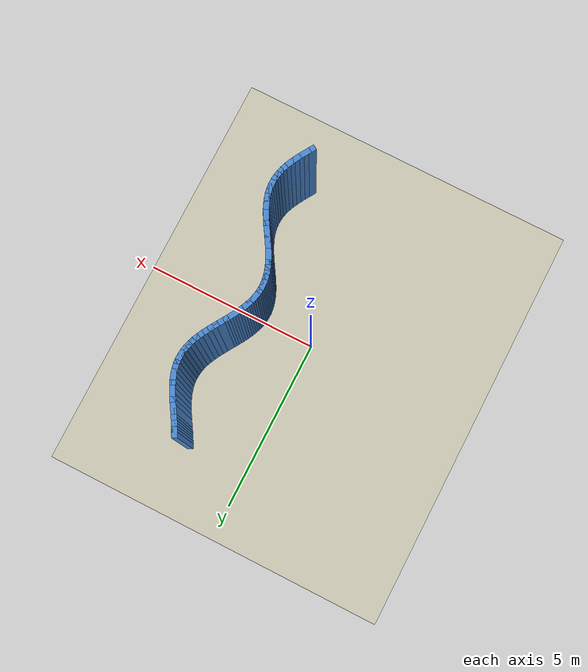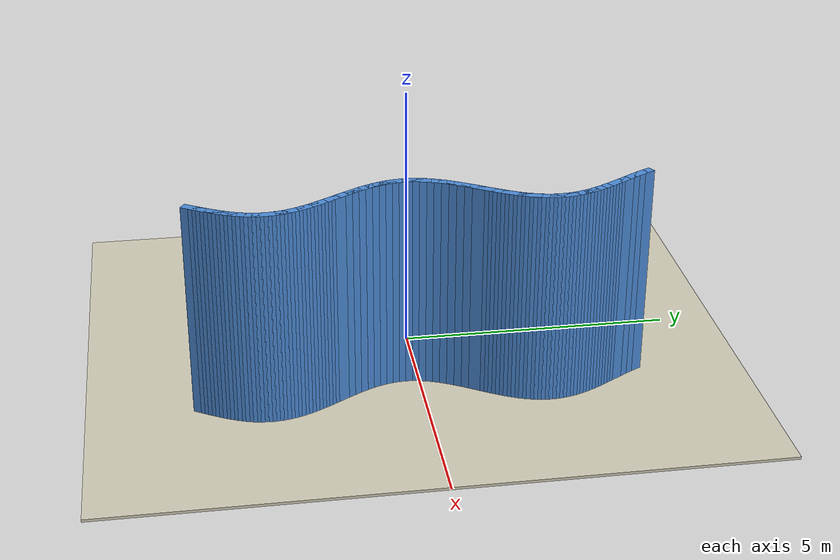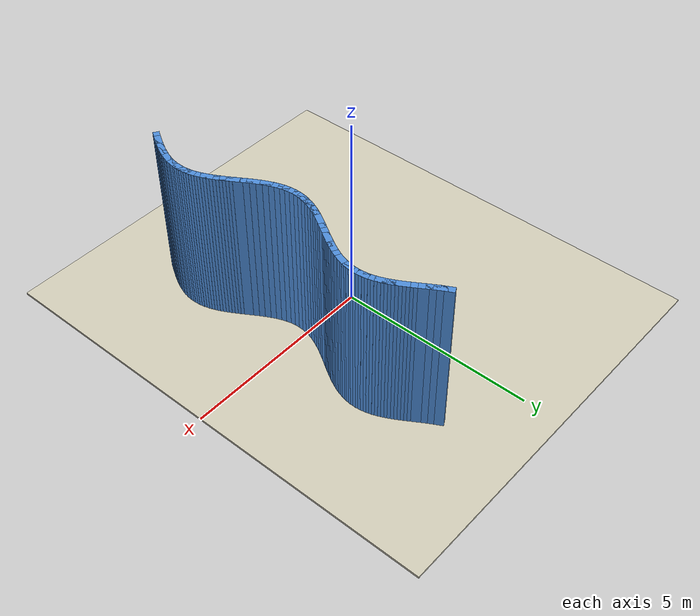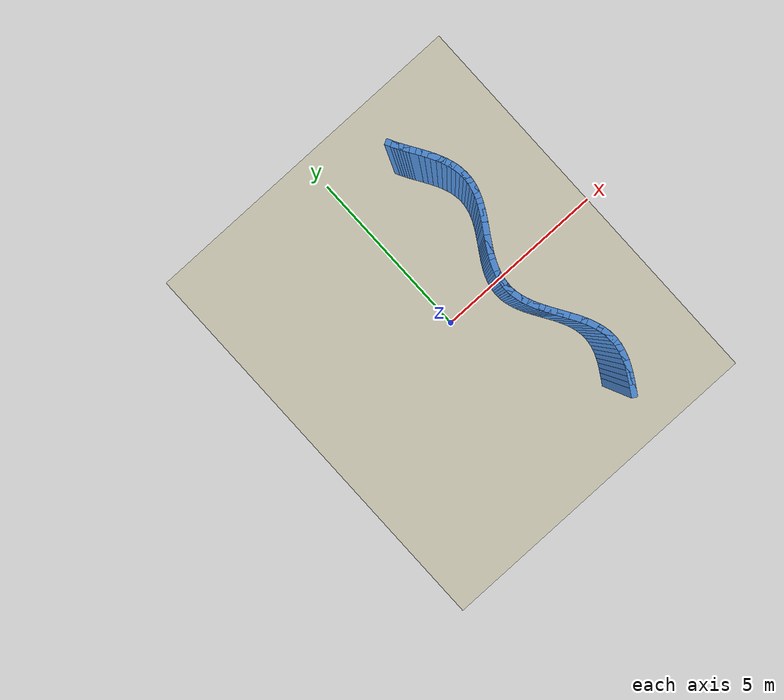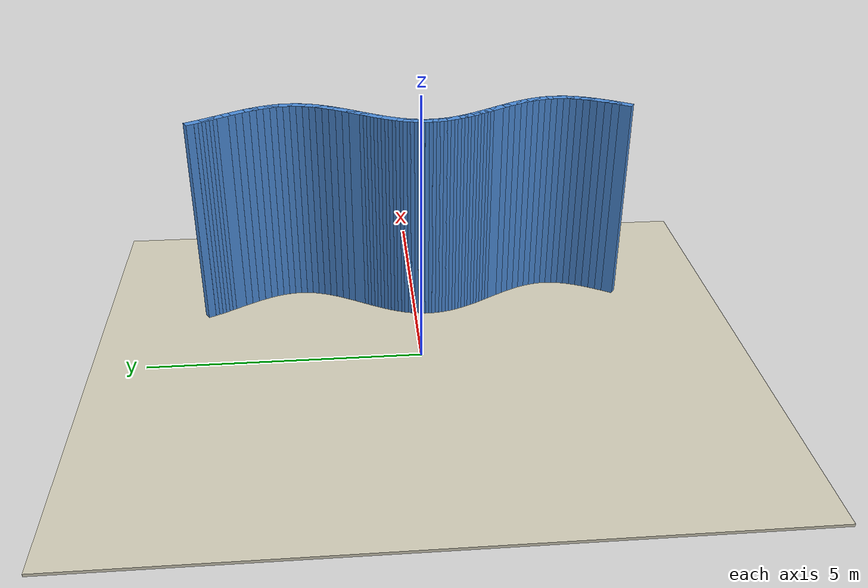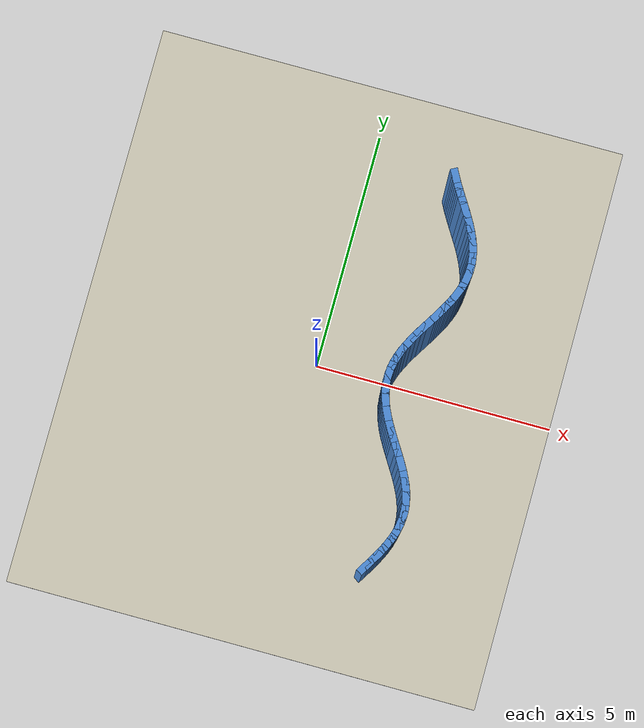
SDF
<sdf version="1.9">
 <world name="p3_wave">
  <physics name="1ms" type="ignored">
   <max_step_size>0.001</max_step_size>
   <real_time_factor>1.0</real_time_factor>
  </physics>
  <plugin filename="gz-sim-physics-system" name="gz::sim::systems::Physics"/>
  <plugin filename="gz-sim-scene-broadcaster-system" name="gz::sim::systems::SceneBroadcaster"/>
  <plugin filename="gz-sim-user-commands-system" name="gz::sim::systems::UserCommands"/>
  <plugin filename="gz-sim-sensors-system" name="gz::sim::systems::Sensors">
   <render_engine>ogre2</render_engine>
  </plugin>
  <plugin filename="gz-sim-imu-system" name="gz::sim::systems::Imu"/>
  <plugin filename="gz-sim-navsat-system" name="gz::sim::systems::NavSat"/>
  <spherical_coordinates>
   <latitude_deg>-35.363262</latitude_deg>
   <longitude_deg>149.165237</longitude_deg>
   <elevation>584</elevation>
   <heading_deg>0</heading_deg>
   <surface_model>EARTH_WGS84</surface_model>
  </spherical_coordinates>
  <light type="directional" name="main_light">
   <cast_shadows>false</cast_shadows>
   <pose>0 0 10 0 0 0</pose>
   <diffuse>1.0 1.0 1.0 1</diffuse>
   <specular>0.5 0.5 0.5 1</specular>
   <direction>0.1 0.1 -1</direction>
  </light>
  <model name="floor">
   <static>true</static>
   <link name="link">
    <collision name="c"><geometry><box><size>10.0 12.0 0.05</size></box></geometry></collision>
    <visual name="v">
     <geometry><box><size>10.0 12.0 0.05</size></box></geometry>
     <material><ambient>0.82 0.80 0.72 1</ambient><diffuse>0.82 0.80 0.72 1</diffuse></material>
    </visual>
   </link>
  </model>
  <model name="wall_000">
   <static>true</static>
   <pose>2.0391 -3.9375 2.0000 0 0 1.01167</pose>
   <link name="link">
    <collision name="c"><geometry><box><size>0.2975 0.1500 4.0000</size></box></geometry></collision>
    <visual name="v">
     <geometry><box><size>0.2975 0.1500 4.0000</size></box></geometry>
     <material><ambient>0.3 0.55 0.85 1</ambient><diffuse>0.3 0.55 0.85 1</diffuse></material>
    </visual>
   </link>
  </model>
  <model name="wall_001">
   <static>true</static>
   <pose>2.1164 -3.8125 2.0000 0 0 1.02282</pose>
   <link name="link">
    <collision name="c"><geometry><box><size>0.2964 0.1500 4.0000</size></box></geometry></collision>
    <visual name="v">
     <geometry><box><size>0.2964 0.1500 4.0000</size></box></geometry>
     <material><ambient>0.3 0.55 0.85 1</ambient><diffuse>0.3 0.55 0.85 1</diffuse></material>
    </visual>
   </link>
  </model>
  <model name="wall_002">
   <static>true</static>
   <pose>2.1908 -3.6875 2.0000 0 0 1.04529</pose>
   <link name="link">
    <collision name="c"><geometry><box><size>0.2945 0.1500 4.0000</size></box></geometry></collision>
    <visual name="v">
     <geometry><box><size>0.2945 0.1500 4.0000</size></box></geometry>
     <material><ambient>0.3 0.55 0.85 1</ambient><diffuse>0.3 0.55 0.85 1</diffuse></material>
    </visual>
   </link>
  </model>
  <model name="wall_003">
   <static>true</static>
   <pose>2.2604 -3.5625 2.0000 0 0 1.07940</pose>
   <link name="link">
    <collision name="c"><geometry><box><size>0.2918 0.1500 4.0000</size></box></geometry></collision>
    <visual name="v">
     <geometry><box><size>0.2918 0.1500 4.0000</size></box></geometry>
     <material><ambient>0.3 0.55 0.85 1</ambient><diffuse>0.3 0.55 0.85 1</diffuse></material>
    </visual>
   </link>
  </model>
  <model name="wall_004">
   <static>true</static>
   <pose>2.3237 -3.4375 2.0000 0 0 1.12548</pose>
   <link name="link">
    <collision name="c"><geometry><box><size>0.2885 0.1500 4.0000</size></box></geometry></collision>
    <visual name="v">
     <geometry><box><size>0.2885 0.1500 4.0000</size></box></geometry>
     <material><ambient>0.3 0.55 0.85 1</ambient><diffuse>0.3 0.55 0.85 1</diffuse></material>
    </visual>
   </link>
  </model>
  <model name="wall_005">
   <static>true</static>
   <pose>2.3790 -3.3125 2.0000 0 0 1.18372</pose>
   <link name="link">
    <collision name="c"><geometry><box><size>0.2850 0.1500 4.0000</size></box></geometry></collision>
    <visual name="v">
     <geometry><box><size>0.2850 0.1500 4.0000</size></box></geometry>
     <material><ambient>0.3 0.55 0.85 1</ambient><diffuse>0.3 0.55 0.85 1</diffuse></material>
    </visual>
   </link>
  </model>
  <model name="wall_006">
   <static>true</static>
   <pose>2.4250 -3.1875 2.0000 0 0 1.25389</pose>
   <link name="link">
    <collision name="c"><geometry><box><size>0.2816 0.1500 4.0000</size></box></geometry></collision>
    <visual name="v">
     <geometry><box><size>0.2816 0.1500 4.0000</size></box></geometry>
     <material><ambient>0.3 0.55 0.85 1</ambient><diffuse>0.3 0.55 0.85 1</diffuse></material>
    </visual>
   </link>
  </model>
  <model name="wall_007">
   <static>true</static>
   <pose>2.4605 -3.0625 2.0000 0 0 1.33506</pose>
   <link name="link">
    <collision name="c"><geometry><box><size>0.2786 0.1500 4.0000</size></box></geometry></collision>
    <visual name="v">
     <geometry><box><size>0.2786 0.1500 4.0000</size></box></geometry>
     <material><ambient>0.3 0.55 0.85 1</ambient><diffuse>0.3 0.55 0.85 1</diffuse></material>
    </visual>
   </link>
  </model>
  <model name="wall_008">
   <static>true</static>
   <pose>2.4847 -2.9375 2.0000 0 0 1.42530</pose>
   <link name="link">
    <collision name="c"><geometry><box><size>0.2763 0.1500 4.0000</size></box></geometry></collision>
    <visual name="v">
     <geometry><box><size>0.2763 0.1500 4.0000</size></box></geometry>
     <material><ambient>0.3 0.55 0.85 1</ambient><diffuse>0.3 0.55 0.85 1</diffuse></material>
    </visual>
   </link>
  </model>
  <model name="wall_009">
   <static>true</static>
   <pose>2.4969 -2.8125 2.0000 0 0 1.52159</pose>
   <link name="link">
    <collision name="c"><geometry><box><size>0.2752 0.1500 4.0000</size></box></geometry></collision>
    <visual name="v">
     <geometry><box><size>0.2752 0.1500 4.0000</size></box></geometry>
     <material><ambient>0.3 0.55 0.85 1</ambient><diffuse>0.3 0.55 0.85 1</diffuse></material>
    </visual>
   </link>
  </model>
  <model name="wall_010">
   <static>true</static>
   <pose>2.4969 -2.6875 2.0000 0 0 1.62000</pose>
   <link name="link">
    <collision name="c"><geometry><box><size>0.2752 0.1500 4.0000</size></box></geometry></collision>
    <visual name="v">
     <geometry><box><size>0.2752 0.1500 4.0000</size></box></geometry>
     <material><ambient>0.3 0.55 0.85 1</ambient><diffuse>0.3 0.55 0.85 1</diffuse></material>
    </visual>
   </link>
  </model>
  <model name="wall_011">
   <static>true</static>
   <pose>2.4847 -2.5625 2.0000 0 0 1.71629</pose>
   <link name="link">
    <collision name="c"><geometry><box><size>0.2763 0.1500 4.0000</size></box></geometry></collision>
    <visual name="v">
     <geometry><box><size>0.2763 0.1500 4.0000</size></box></geometry>
     <material><ambient>0.3 0.55 0.85 1</ambient><diffuse>0.3 0.55 0.85 1</diffuse></material>
    </visual>
   </link>
  </model>
  <model name="wall_012">
   <static>true</static>
   <pose>2.4605 -2.4375 2.0000 0 0 1.80653</pose>
   <link name="link">
    <collision name="c"><geometry><box><size>0.2786 0.1500 4.0000</size></box></geometry></collision>
    <visual name="v">
     <geometry><box><size>0.2786 0.1500 4.0000</size></box></geometry>
     <material><ambient>0.3 0.55 0.85 1</ambient><diffuse>0.3 0.55 0.85 1</diffuse></material>
    </visual>
   </link>
  </model>
  <model name="wall_013">
   <static>true</static>
   <pose>2.4250 -2.3125 2.0000 0 0 1.88770</pose>
   <link name="link">
    <collision name="c"><geometry><box><size>0.2816 0.1500 4.0000</size></box></geometry></collision>
    <visual name="v">
     <geometry><box><size>0.2816 0.1500 4.0000</size></box></geometry>
     <material><ambient>0.3 0.55 0.85 1</ambient><diffuse>0.3 0.55 0.85 1</diffuse></material>
    </visual>
   </link>
  </model>
  <model name="wall_014">
   <static>true</static>
   <pose>2.3790 -2.1875 2.0000 0 0 1.95787</pose>
   <link name="link">
    <collision name="c"><geometry><box><size>0.2850 0.1500 4.0000</size></box></geometry></collision>
    <visual name="v">
     <geometry><box><size>0.2850 0.1500 4.0000</size></box></geometry>
     <material><ambient>0.3 0.55 0.85 1</ambient><diffuse>0.3 0.55 0.85 1</diffuse></material>
    </visual>
   </link>
  </model>
  <model name="wall_015">
   <static>true</static>
   <pose>2.3237 -2.0625 2.0000 0 0 2.01611</pose>
   <link name="link">
    <collision name="c"><geometry><box><size>0.2885 0.1500 4.0000</size></box></geometry></collision>
    <visual name="v">
     <geometry><box><size>0.2885 0.1500 4.0000</size></box></geometry>
     <material><ambient>0.3 0.55 0.85 1</ambient><diffuse>0.3 0.55 0.85 1</diffuse></material>
    </visual>
   </link>
  </model>
  <model name="wall_016">
   <static>true</static>
   <pose>2.2604 -1.9375 2.0000 0 0 2.06219</pose>
   <link name="link">
    <collision name="c"><geometry><box><size>0.2918 0.1500 4.0000</size></box></geometry></collision>
    <visual name="v">
     <geometry><box><size>0.2918 0.1500 4.0000</size></box></geometry>
     <material><ambient>0.3 0.55 0.85 1</ambient><diffuse>0.3 0.55 0.85 1</diffuse></material>
    </visual>
   </link>
  </model>
  <model name="wall_017">
   <static>true</static>
   <pose>2.1908 -1.8125 2.0000 0 0 2.09630</pose>
   <link name="link">
    <collision name="c"><geometry><box><size>0.2945 0.1500 4.0000</size></box></geometry></collision>
    <visual name="v">
     <geometry><box><size>0.2945 0.1500 4.0000</size></box></geometry>
     <material><ambient>0.3 0.55 0.85 1</ambient><diffuse>0.3 0.55 0.85 1</diffuse></material>
    </visual>
   </link>
  </model>
  <model name="wall_018">
   <static>true</static>
   <pose>2.1164 -1.6875 2.0000 0 0 2.11878</pose>
   <link name="link">
    <collision name="c"><geometry><box><size>0.2964 0.1500 4.0000</size></box></geometry></collision>
    <visual name="v">
     <geometry><box><size>0.2964 0.1500 4.0000</size></box></geometry>
     <material><ambient>0.3 0.55 0.85 1</ambient><diffuse>0.3 0.55 0.85 1</diffuse></material>
    </visual>
   </link>
  </model>
  <model name="wall_019">
   <static>true</static>
   <pose>2.0391 -1.5625 2.0000 0 0 2.12993</pose>
   <link name="link">
    <collision name="c"><geometry><box><size>0.2975 0.1500 4.0000</size></box></geometry></collision>
    <visual name="v">
     <geometry><box><size>0.2975 0.1500 4.0000</size></box></geometry>
     <material><ambient>0.3 0.55 0.85 1</ambient><diffuse>0.3 0.55 0.85 1</diffuse></material>
    </visual>
   </link>
  </model>
  <model name="wall_020">
   <static>true</static>
   <pose>1.9609 -1.4375 2.0000 0 0 2.12993</pose>
   <link name="link">
    <collision name="c"><geometry><box><size>0.2975 0.1500 4.0000</size></box></geometry></collision>
    <visual name="v">
     <geometry><box><size>0.2975 0.1500 4.0000</size></box></geometry>
     <material><ambient>0.3 0.55 0.85 1</ambient><diffuse>0.3 0.55 0.85 1</diffuse></material>
    </visual>
   </link>
  </model>
  <model name="wall_021">
   <static>true</static>
   <pose>1.8836 -1.3125 2.0000 0 0 2.11878</pose>
   <link name="link">
    <collision name="c"><geometry><box><size>0.2964 0.1500 4.0000</size></box></geometry></collision>
    <visual name="v">
     <geometry><box><size>0.2964 0.1500 4.0000</size></box></geometry>
     <material><ambient>0.3 0.55 0.85 1</ambient><diffuse>0.3 0.55 0.85 1</diffuse></material>
    </visual>
   </link>
  </model>
  <model name="wall_022">
   <static>true</static>
   <pose>1.8092 -1.1875 2.0000 0 0 2.09630</pose>
   <link name="link">
    <collision name="c"><geometry><box><size>0.2945 0.1500 4.0000</size></box></geometry></collision>
    <visual name="v">
     <geometry><box><size>0.2945 0.1500 4.0000</size></box></geometry>
     <material><ambient>0.3 0.55 0.85 1</ambient><diffuse>0.3 0.55 0.85 1</diffuse></material>
    </visual>
   </link>
  </model>
  <model name="wall_023">
   <static>true</static>
   <pose>1.7396 -1.0625 2.0000 0 0 2.06219</pose>
   <link name="link">
    <collision name="c"><geometry><box><size>0.2918 0.1500 4.0000</size></box></geometry></collision>
    <visual name="v">
     <geometry><box><size>0.2918 0.1500 4.0000</size></box></geometry>
     <material><ambient>0.3 0.55 0.85 1</ambient><diffuse>0.3 0.55 0.85 1</diffuse></material>
    </visual>
   </link>
  </model>
  <model name="wall_024">
   <static>true</static>
   <pose>1.6763 -0.9375 2.0000 0 0 2.01611</pose>
   <link name="link">
    <collision name="c"><geometry><box><size>0.2885 0.1500 4.0000</size></box></geometry></collision>
    <visual name="v">
     <geometry><box><size>0.2885 0.1500 4.0000</size></box></geometry>
     <material><ambient>0.3 0.55 0.85 1</ambient><diffuse>0.3 0.55 0.85 1</diffuse></material>
    </visual>
   </link>
  </model>
  <model name="wall_025">
   <static>true</static>
   <pose>1.6210 -0.8125 2.0000 0 0 1.95787</pose>
   <link name="link">
    <collision name="c"><geometry><box><size>0.2850 0.1500 4.0000</size></box></geometry></collision>
    <visual name="v">
     <geometry><box><size>0.2850 0.1500 4.0000</size></box></geometry>
     <material><ambient>0.3 0.55 0.85 1</ambient><diffuse>0.3 0.55 0.85 1</diffuse></material>
    </visual>
   </link>
  </model>
  <model name="wall_026">
   <static>true</static>
   <pose>1.5750 -0.6875 2.0000 0 0 1.88770</pose>
   <link name="link">
    <collision name="c"><geometry><box><size>0.2816 0.1500 4.0000</size></box></geometry></collision>
    <visual name="v">
     <geometry><box><size>0.2816 0.1500 4.0000</size></box></geometry>
     <material><ambient>0.3 0.55 0.85 1</ambient><diffuse>0.3 0.55 0.85 1</diffuse></material>
    </visual>
   </link>
  </model>
  <model name="wall_027">
   <static>true</static>
   <pose>1.5395 -0.5625 2.0000 0 0 1.80653</pose>
   <link name="link">
    <collision name="c"><geometry><box><size>0.2786 0.1500 4.0000</size></box></geometry></collision>
    <visual name="v">
     <geometry><box><size>0.2786 0.1500 4.0000</size></box></geometry>
     <material><ambient>0.3 0.55 0.85 1</ambient><diffuse>0.3 0.55 0.85 1</diffuse></material>
    </visual>
   </link>
  </model>
  <model name="wall_028">
   <static>true</static>
   <pose>1.5153 -0.4375 2.0000 0 0 1.71629</pose>
   <link name="link">
    <collision name="c"><geometry><box><size>0.2763 0.1500 4.0000</size></box></geometry></collision>
    <visual name="v">
     <geometry><box><size>0.2763 0.1500 4.0000</size></box></geometry>
     <material><ambient>0.3 0.55 0.85 1</ambient><diffuse>0.3 0.55 0.85 1</diffuse></material>
    </visual>
   </link>
  </model>
  <model name="wall_029">
   <static>true</static>
   <pose>1.5031 -0.3125 2.0000 0 0 1.62000</pose>
   <link name="link">
    <collision name="c"><geometry><box><size>0.2752 0.1500 4.0000</size></box></geometry></collision>
    <visual name="v">
     <geometry><box><size>0.2752 0.1500 4.0000</size></box></geometry>
     <material><ambient>0.3 0.55 0.85 1</ambient><diffuse>0.3 0.55 0.85 1</diffuse></material>
    </visual>
   </link>
  </model>
  <model name="wall_030">
   <static>true</static>
   <pose>1.5031 -0.1875 2.0000 0 0 1.52159</pose>
   <link name="link">
    <collision name="c"><geometry><box><size>0.2752 0.1500 4.0000</size></box></geometry></collision>
    <visual name="v">
     <geometry><box><size>0.2752 0.1500 4.0000</size></box></geometry>
     <material><ambient>0.3 0.55 0.85 1</ambient><diffuse>0.3 0.55 0.85 1</diffuse></material>
    </visual>
   </link>
  </model>
  <model name="wall_031">
   <static>true</static>
   <pose>1.5153 -0.0625 2.0000 0 0 1.42530</pose>
   <link name="link">
    <collision name="c"><geometry><box><size>0.2763 0.1500 4.0000</size></box></geometry></collision>
    <visual name="v">
     <geometry><box><size>0.2763 0.1500 4.0000</size></box></geometry>
     <material><ambient>0.3 0.55 0.85 1</ambient><diffuse>0.3 0.55 0.85 1</diffuse></material>
    </visual>
   </link>
  </model>
  <model name="wall_032">
   <static>true</static>
   <pose>1.5395 0.0625 2.0000 0 0 1.33506</pose>
   <link name="link">
    <collision name="c"><geometry><box><size>0.2786 0.1500 4.0000</size></box></geometry></collision>
    <visual name="v">
     <geometry><box><size>0.2786 0.1500 4.0000</size></box></geometry>
     <material><ambient>0.3 0.55 0.85 1</ambient><diffuse>0.3 0.55 0.85 1</diffuse></material>
    </visual>
   </link>
  </model>
  <model name="wall_033">
   <static>true</static>
   <pose>1.5750 0.1875 2.0000 0 0 1.25389</pose>
   <link name="link">
    <collision name="c"><geometry><box><size>0.2816 0.1500 4.0000</size></box></geometry></collision>
    <visual name="v">
     <geometry><box><size>0.2816 0.1500 4.0000</size></box></geometry>
     <material><ambient>0.3 0.55 0.85 1</ambient><diffuse>0.3 0.55 0.85 1</diffuse></material>
    </visual>
   </link>
  </model>
  <model name="wall_034">
   <static>true</static>
   <pose>1.6210 0.3125 2.0000 0 0 1.18372</pose>
   <link name="link">
    <collision name="c"><geometry><box><size>0.2850 0.1500 4.0000</size></box></geometry></collision>
    <visual name="v">
     <geometry><box><size>0.2850 0.1500 4.0000</size></box></geometry>
     <material><ambient>0.3 0.55 0.85 1</ambient><diffuse>0.3 0.55 0.85 1</diffuse></material>
    </visual>
   </link>
  </model>
  <model name="wall_035">
   <static>true</static>
   <pose>1.6763 0.4375 2.0000 0 0 1.12548</pose>
   <link name="link">
    <collision name="c"><geometry><box><size>0.2885 0.1500 4.0000</size></box></geometry></collision>
    <visual name="v">
     <geometry><box><size>0.2885 0.1500 4.0000</size></box></geometry>
     <material><ambient>0.3 0.55 0.85 1</ambient><diffuse>0.3 0.55 0.85 1</diffuse></material>
    </visual>
   </link>
  </model>
  <model name="wall_036">
   <static>true</static>
   <pose>1.7396 0.5625 2.0000 0 0 1.07940</pose>
   <link name="link">
    <collision name="c"><geometry><box><size>0.2918 0.1500 4.0000</size></box></geometry></collision>
    <visual name="v">
     <geometry><box><size>0.2918 0.1500 4.0000</size></box></geometry>
     <material><ambient>0.3 0.55 0.85 1</ambient><diffuse>0.3 0.55 0.85 1</diffuse></material>
    </visual>
   </link>
  </model>
  <model name="wall_037">
   <static>true</static>
   <pose>1.8092 0.6875 2.0000 0 0 1.04529</pose>
   <link name="link">
    <collision name="c"><geometry><box><size>0.2945 0.1500 4.0000</size></box></geometry></collision>
    <visual name="v">
     <geometry><box><size>0.2945 0.1500 4.0000</size></box></geometry>
     <material><ambient>0.3 0.55 0.85 1</ambient><diffuse>0.3 0.55 0.85 1</diffuse></material>
    </visual>
   </link>
  </model>
  <model name="wall_038">
   <static>true</static>
   <pose>1.8836 0.8125 2.0000 0 0 1.02282</pose>
   <link name="link">
    <collision name="c"><geometry><box><size>0.2964 0.1500 4.0000</size></box></geometry></collision>
    <visual name="v">
     <geometry><box><size>0.2964 0.1500 4.0000</size></box></geometry>
     <material><ambient>0.3 0.55 0.85 1</ambient><diffuse>0.3 0.55 0.85 1</diffuse></material>
    </visual>
   </link>
  </model>
  <model name="wall_039">
   <static>true</static>
   <pose>1.9609 0.9375 2.0000 0 0 1.01167</pose>
   <link name="link">
    <collision name="c"><geometry><box><size>0.2975 0.1500 4.0000</size></box></geometry></collision>
    <visual name="v">
     <geometry><box><size>0.2975 0.1500 4.0000</size></box></geometry>
     <material><ambient>0.3 0.55 0.85 1</ambient><diffuse>0.3 0.55 0.85 1</diffuse></material>
    </visual>
   </link>
  </model>
  <model name="wall_040">
   <static>true</static>
   <pose>2.0391 1.0625 2.0000 0 0 1.01167</pose>
   <link name="link">
    <collision name="c"><geometry><box><size>0.2975 0.1500 4.0000</size></box></geometry></collision>
    <visual name="v">
     <geometry><box><size>0.2975 0.1500 4.0000</size></box></geometry>
     <material><ambient>0.3 0.55 0.85 1</ambient><diffuse>0.3 0.55 0.85 1</diffuse></material>
    </visual>
   </link>
  </model>
  <model name="wall_041">
   <static>true</static>
   <pose>2.1164 1.1875 2.0000 0 0 1.02282</pose>
   <link name="link">
    <collision name="c"><geometry><box><size>0.2964 0.1500 4.0000</size></box></geometry></collision>
    <visual name="v">
     <geometry><box><size>0.2964 0.1500 4.0000</size></box></geometry>
     <material><ambient>0.3 0.55 0.85 1</ambient><diffuse>0.3 0.55 0.85 1</diffuse></material>
    </visual>
   </link>
  </model>
  <model name="wall_042">
   <static>true</static>
   <pose>2.1908 1.3125 2.0000 0 0 1.04529</pose>
   <link name="link">
    <collision name="c"><geometry><box><size>0.2945 0.1500 4.0000</size></box></geometry></collision>
    <visual name="v">
     <geometry><box><size>0.2945 0.1500 4.0000</size></box></geometry>
     <material><ambient>0.3 0.55 0.85 1</ambient><diffuse>0.3 0.55 0.85 1</diffuse></material>
    </visual>
   </link>
  </model>
  <model name="wall_043">
   <static>true</static>
   <pose>2.2604 1.4375 2.0000 0 0 1.07940</pose>
   <link name="link">
    <collision name="c"><geometry><box><size>0.2918 0.1500 4.0000</size></box></geometry></collision>
    <visual name="v">
     <geometry><box><size>0.2918 0.1500 4.0000</size></box></geometry>
     <material><ambient>0.3 0.55 0.85 1</ambient><diffuse>0.3 0.55 0.85 1</diffuse></material>
    </visual>
   </link>
  </model>
  <model name="wall_044">
   <static>true</static>
   <pose>2.3237 1.5625 2.0000 0 0 1.12548</pose>
   <link name="link">
    <collision name="c"><geometry><box><size>0.2885 0.1500 4.0000</size></box></geometry></collision>
    <visual name="v">
     <geometry><box><size>0.2885 0.1500 4.0000</size></box></geometry>
     <material><ambient>0.3 0.55 0.85 1</ambient><diffuse>0.3 0.55 0.85 1</diffuse></material>
    </visual>
   </link>
  </model>
  <model name="wall_045">
   <static>true</static>
   <pose>2.3790 1.6875 2.0000 0 0 1.18372</pose>
   <link name="link">
    <collision name="c"><geometry><box><size>0.2850 0.1500 4.0000</size></box></geometry></collision>
    <visual name="v">
     <geometry><box><size>0.2850 0.1500 4.0000</size></box></geometry>
     <material><ambient>0.3 0.55 0.85 1</ambient><diffuse>0.3 0.55 0.85 1</diffuse></material>
    </visual>
   </link>
  </model>
  <model name="wall_046">
   <static>true</static>
   <pose>2.4250 1.8125 2.0000 0 0 1.25389</pose>
   <link name="link">
    <collision name="c"><geometry><box><size>0.2816 0.1500 4.0000</size></box></geometry></collision>
    <visual name="v">
     <geometry><box><size>0.2816 0.1500 4.0000</size></box></geometry>
     <material><ambient>0.3 0.55 0.85 1</ambient><diffuse>0.3 0.55 0.85 1</diffuse></material>
    </visual>
   </link>
  </model>
  <model name="wall_047">
   <static>true</static>
   <pose>2.4605 1.9375 2.0000 0 0 1.33506</pose>
   <link name="link">
    <collision name="c"><geometry><box><size>0.2786 0.1500 4.0000</size></box></geometry></collision>
    <visual name="v">
     <geometry><box><size>0.2786 0.1500 4.0000</size></box></geometry>
     <material><ambient>0.3 0.55 0.85 1</ambient><diffuse>0.3 0.55 0.85 1</diffuse></material>
    </visual>
   </link>
  </model>
  <model name="wall_048">
   <static>true</static>
   <pose>2.4847 2.0625 2.0000 0 0 1.42530</pose>
   <link name="link">
    <collision name="c"><geometry><box><size>0.2763 0.1500 4.0000</size></box></geometry></collision>
    <visual name="v">
     <geometry><box><size>0.2763 0.1500 4.0000</size></box></geometry>
     <material><ambient>0.3 0.55 0.85 1</ambient><diffuse>0.3 0.55 0.85 1</diffuse></material>
    </visual>
   </link>
  </model>
  <model name="wall_049">
   <static>true</static>
   <pose>2.4969 2.1875 2.0000 0 0 1.52159</pose>
   <link name="link">
    <collision name="c"><geometry><box><size>0.2752 0.1500 4.0000</size></box></geometry></collision>
    <visual name="v">
     <geometry><box><size>0.2752 0.1500 4.0000</size></box></geometry>
     <material><ambient>0.3 0.55 0.85 1</ambient><diffuse>0.3 0.55 0.85 1</diffuse></material>
    </visual>
   </link>
  </model>
  <model name="wall_050">
   <static>true</static>
   <pose>2.4969 2.3125 2.0000 0 0 1.62000</pose>
   <link name="link">
    <collision name="c"><geometry><box><size>0.2752 0.1500 4.0000</size></box></geometry></collision>
    <visual name="v">
     <geometry><box><size>0.2752 0.1500 4.0000</size></box></geometry>
     <material><ambient>0.3 0.55 0.85 1</ambient><diffuse>0.3 0.55 0.85 1</diffuse></material>
    </visual>
   </link>
  </model>
  <model name="wall_051">
   <static>true</static>
   <pose>2.4847 2.4375 2.0000 0 0 1.71629</pose>
   <link name="link">
    <collision name="c"><geometry><box><size>0.2763 0.1500 4.0000</size></box></geometry></collision>
    <visual name="v">
     <geometry><box><size>0.2763 0.1500 4.0000</size></box></geometry>
     <material><ambient>0.3 0.55 0.85 1</ambient><diffuse>0.3 0.55 0.85 1</diffuse></material>
    </visual>
   </link>
  </model>
  <model name="wall_052">
   <static>true</static>
   <pose>2.4605 2.5625 2.0000 0 0 1.80653</pose>
   <link name="link">
    <collision name="c"><geometry><box><size>0.2786 0.1500 4.0000</size></box></geometry></collision>
    <visual name="v">
     <geometry><box><size>0.2786 0.1500 4.0000</size></box></geometry>
     <material><ambient>0.3 0.55 0.85 1</ambient><diffuse>0.3 0.55 0.85 1</diffuse></material>
    </visual>
   </link>
  </model>
  <model name="wall_053">
   <static>true</static>
   <pose>2.4250 2.6875 2.0000 0 0 1.88770</pose>
   <link name="link">
    <collision name="c"><geometry><box><size>0.2816 0.1500 4.0000</size></box></geometry></collision>
    <visual name="v">
     <geometry><box><size>0.2816 0.1500 4.0000</size></box></geometry>
     <material><ambient>0.3 0.55 0.85 1</ambient><diffuse>0.3 0.55 0.85 1</diffuse></material>
    </visual>
   </link>
  </model>
  <model name="wall_054">
   <static>true</static>
   <pose>2.3790 2.8125 2.0000 0 0 1.95787</pose>
   <link name="link">
    <collision name="c"><geometry><box><size>0.2850 0.1500 4.0000</size></box></geometry></collision>
    <visual name="v">
     <geometry><box><size>0.2850 0.1500 4.0000</size></box></geometry>
     <material><ambient>0.3 0.55 0.85 1</ambient><diffuse>0.3 0.55 0.85 1</diffuse></material>
    </visual>
   </link>
  </model>
  <model name="wall_055">
   <static>true</static>
   <pose>2.3237 2.9375 2.0000 0 0 2.01611</pose>
   <link name="link">
    <collision name="c"><geometry><box><size>0.2885 0.1500 4.0000</size></box></geometry></collision>
    <visual name="v">
     <geometry><box><size>0.2885 0.1500 4.0000</size></box></geometry>
     <material><ambient>0.3 0.55 0.85 1</ambient><diffuse>0.3 0.55 0.85 1</diffuse></material>
    </visual>
   </link>
  </model>
  <model name="wall_056">
   <static>true</static>
   <pose>2.2604 3.0625 2.0000 0 0 2.06219</pose>
   <link name="link">
    <collision name="c"><geometry><box><size>0.2918 0.1500 4.0000</size></box></geometry></collision>
    <visual name="v">
     <geometry><box><size>0.2918 0.1500 4.0000</size></box></geometry>
     <material><ambient>0.3 0.55 0.85 1</ambient><diffuse>0.3 0.55 0.85 1</diffuse></material>
    </visual>
   </link>
  </model>
  <model name="wall_057">
   <static>true</static>
   <pose>2.1908 3.1875 2.0000 0 0 2.09630</pose>
   <link name="link">
    <collision name="c"><geometry><box><size>0.2945 0.1500 4.0000</size></box></geometry></collision>
    <visual name="v">
     <geometry><box><size>0.2945 0.1500 4.0000</size></box></geometry>
     <material><ambient>0.3 0.55 0.85 1</ambient><diffuse>0.3 0.55 0.85 1</diffuse></material>
    </visual>
   </link>
  </model>
  <model name="wall_058">
   <static>true</static>
   <pose>2.1164 3.3125 2.0000 0 0 2.11878</pose>
   <link name="link">
    <collision name="c"><geometry><box><size>0.2964 0.1500 4.0000</size></box></geometry></collision>
    <visual name="v">
     <geometry><box><size>0.2964 0.1500 4.0000</size></box></geometry>
     <material><ambient>0.3 0.55 0.85 1</ambient><diffuse>0.3 0.55 0.85 1</diffuse></material>
    </visual>
   </link>
  </model>
  <model name="wall_059">
   <static>true</static>
   <pose>2.0391 3.4375 2.0000 0 0 2.12993</pose>
   <link name="link">
    <collision name="c"><geometry><box><size>0.2975 0.1500 4.0000</size></box></geometry></collision>
    <visual name="v">
     <geometry><box><size>0.2975 0.1500 4.0000</size></box></geometry>
     <material><ambient>0.3 0.55 0.85 1</ambient><diffuse>0.3 0.55 0.85 1</diffuse></material>
    </visual>
   </link>
  </model>
  <model name="wall_060">
   <static>true</static>
   <pose>1.9609 3.5625 2.0000 0 0 2.12993</pose>
   <link name="link">
    <collision name="c"><geometry><box><size>0.2975 0.1500 4.0000</size></box></geometry></collision>
    <visual name="v">
     <geometry><box><size>0.2975 0.1500 4.0000</size></box></geometry>
     <material><ambient>0.3 0.55 0.85 1</ambient><diffuse>0.3 0.55 0.85 1</diffuse></material>
    </visual>
   </link>
  </model>
  <model name="wall_061">
   <static>true</static>
   <pose>1.8836 3.6875 2.0000 0 0 2.11878</pose>
   <link name="link">
    <collision name="c"><geometry><box><size>0.2964 0.1500 4.0000</size></box></geometry></collision>
    <visual name="v">
     <geometry><box><size>0.2964 0.1500 4.0000</size></box></geometry>
     <material><ambient>0.3 0.55 0.85 1</ambient><diffuse>0.3 0.55 0.85 1</diffuse></material>
    </visual>
   </link>
  </model>
  <model name="wall_062">
   <static>true</static>
   <pose>1.8092 3.8125 2.0000 0 0 2.09630</pose>
   <link name="link">
    <collision name="c"><geometry><box><size>0.2945 0.1500 4.0000</size></box></geometry></collision>
    <visual name="v">
     <geometry><box><size>0.2945 0.1500 4.0000</size></box></geometry>
     <material><ambient>0.3 0.55 0.85 1</ambient><diffuse>0.3 0.55 0.85 1</diffuse></material>
    </visual>
   </link>
  </model>
  <model name="wall_063">
   <static>true</static>
   <pose>1.7396 3.9375 2.0000 0 0 2.06219</pose>
   <link name="link">
    <collision name="c"><geometry><box><size>0.2918 0.1500 4.0000</size></box></geometry></collision>
    <visual name="v">
     <geometry><box><size>0.2918 0.1500 4.0000</size></box></geometry>
     <material><ambient>0.3 0.55 0.85 1</ambient><diffuse>0.3 0.55 0.85 1</diffuse></material>
    </visual>
   </link>
  </model>
 </world>
</sdf>
